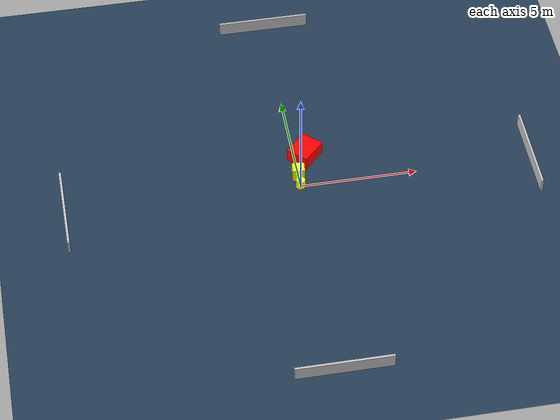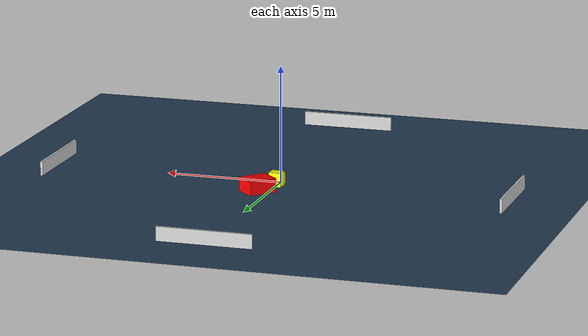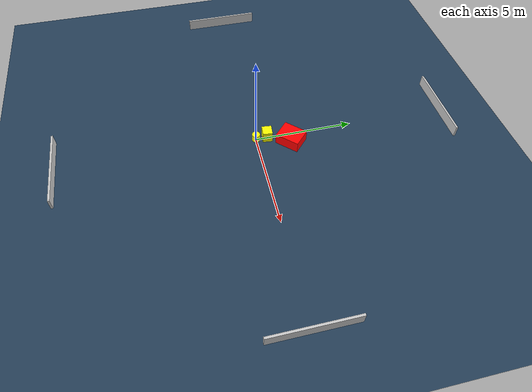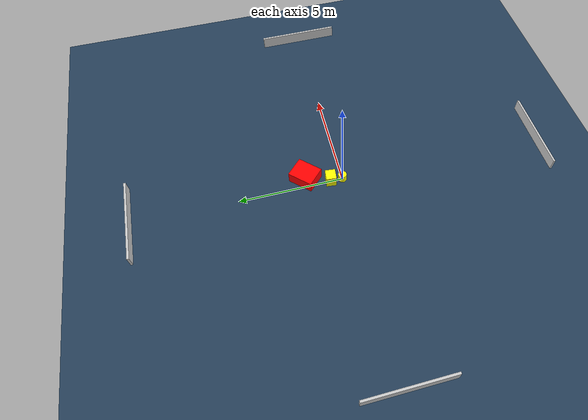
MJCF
<?xml version="1.0" ?>
<mujoco model="generated_environment">
  <option timestep="0.01" integrator="RK4" cone="elliptic"/>
  <default>
    <geom density="1"/>
  </default>
  <asset>
    <texture builtin="gradient" height="3072" name="skybox" rgb1="0.3 0.5 0.7" rgb2="0 0 0" type="skybox" width="512"/>
    <texture builtin="checker" height="300" name="groundplane" rgb1="0.2 0.3 0.4" rgb2="0.1 0.2 0.3" type="2d" width="300"/>
    <material name="groundplane" reflectance="0.2" texrepeat="5 5" texture="groundplane"/>
  </asset>
  <worldbody>
    <light dir="0 0 -1" directional="true" pos="0 0 1.5"/>
    <geom condim="3" friction="0.5 0.005 0.001" material="groundplane" name="floor" pos="0 0 0" size="0 0 0.05" type="plane"/>
    <body name="walls">
      <geom name="wall_1" condim="4" pos="-10.0 0.0 0.3" rgba="0.800000011920929 0.800000011920929 0.800000011920929 1.0" size="0.05 2.0 0.3" type="box"/>
      <geom name="wall_2" condim="4" pos="10.0 0.0 0.3" rgba="0.800000011920929 0.800000011920929 0.800000011920929 1.0" size="0.05 2.0 0.3" type="box"/>
      <geom name="wall_3" condim="4" pos="0.0 -10.0 0.3" rgba="0.800000011920929 0.800000011920929 0.800000011920929 1.0" size="2.0 0.05 0.3" type="box"/>
      <geom name="wall_4" condim="4" pos="0.0 10.0 0.3" rgba="0.800000011920929 0.800000011920929 0.800000011920929 1.0" size="2.0 0.05 0.3" type="box"/>
    </body>
    <body name="robot">
      <joint name="joint_x" type="slide" pos="0 0 0" axis="1 0 0"/>
      <joint name="joint_y" type="slide" pos="0 0 0" axis="0 1 0"/>
      <geom name="robot" type="cylinder" pos="0.0 0.0 0.2" size="0.2 0.2 0.0" mass="5.0" friction="1.0 0.005 0.0001" condim="4" rgba="1.0 1.0 0.0 1.0"/>
    </body>
    <body name="obstacle_1_movable">
      <geom name="obstacle_1_movable" condim="4" pos="0.005924532534413518 0.5700904200529481 0.3" euler="0 0 174.50866946772797" friction="0.0 0.005 0.001" rgba="1.0 1.0 0.0 1.0" size="0.2647069999083871 0.24426668360130455 0.3" type="box" mass="0.1"/>
      <joint type="free"/>
    </body>
    <body name="obstacle_2_static">
      <geom name="obstacle_2_static" condim="4" pos="0.47295188548451234 1.7126259929373764 0.3" euler="0 0 316.3180575847272" friction="0.0 0.005 0.001" rgba="1.0 0.0 0.0 1.0" size="0.4974278723020375 0.6115681752995759 0.3" type="box"/>
    </body>
  </worldbody>
  <actuator>
    <motor name="actuator_x" joint="joint_x" gear="1" ctrlrange="-1 1"/>
    <motor name="actuator_y" joint="joint_y" gear="1" ctrlrange="-1 1"/>
  </actuator>
</mujoco>
